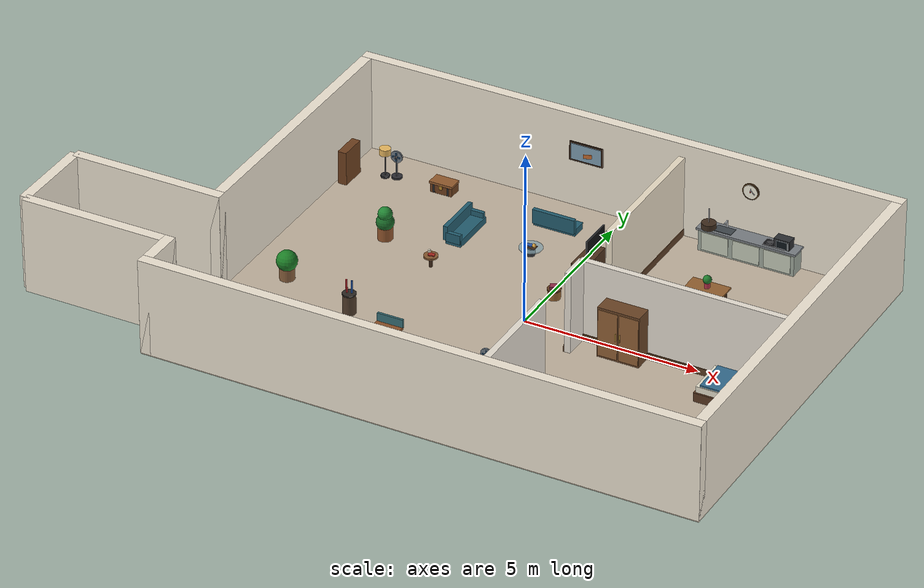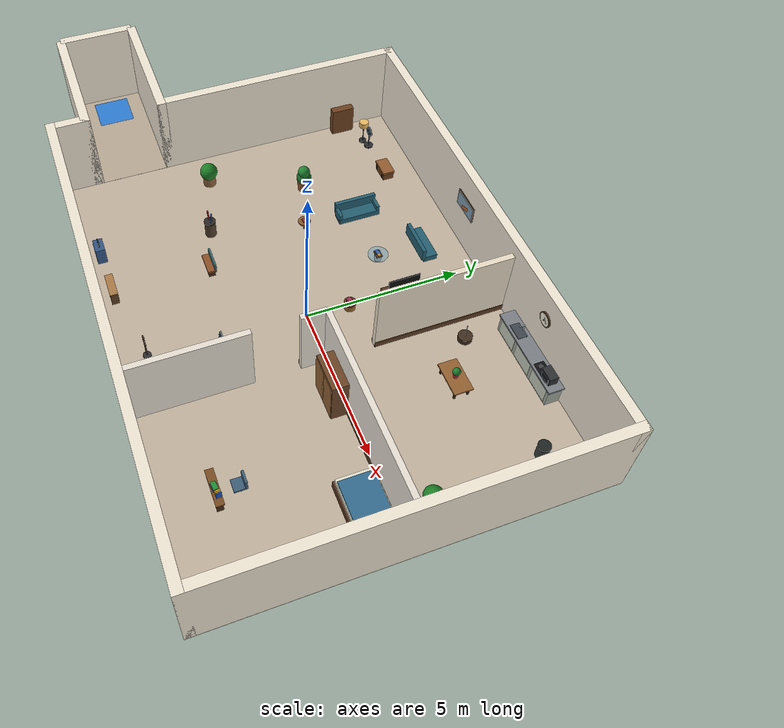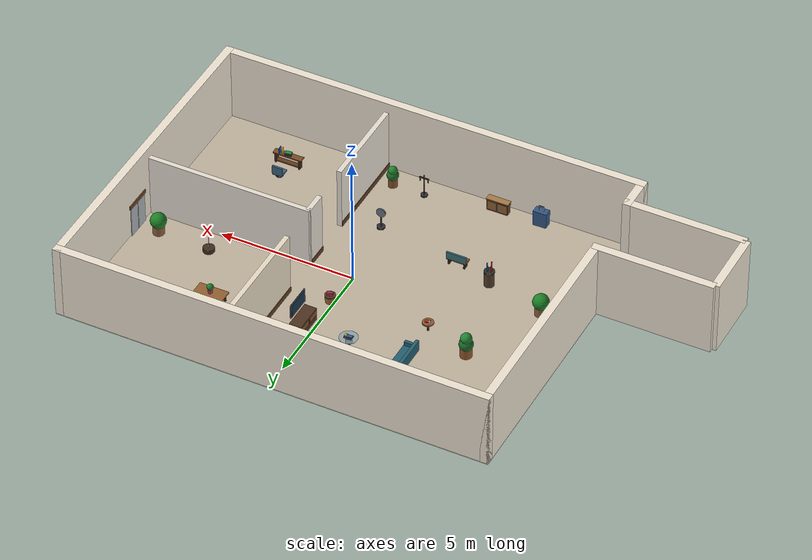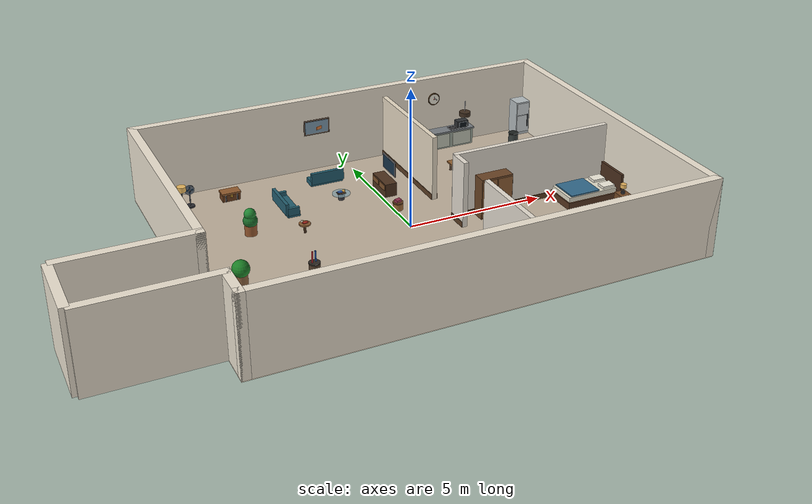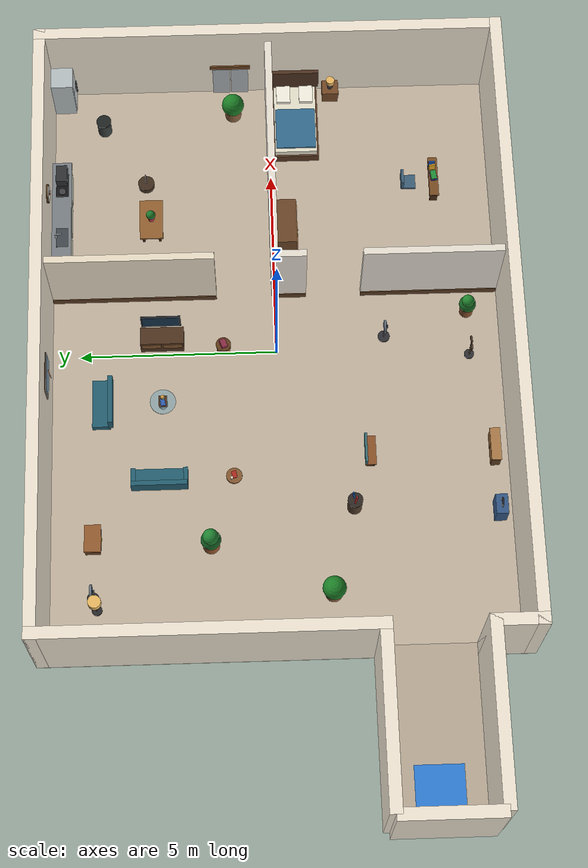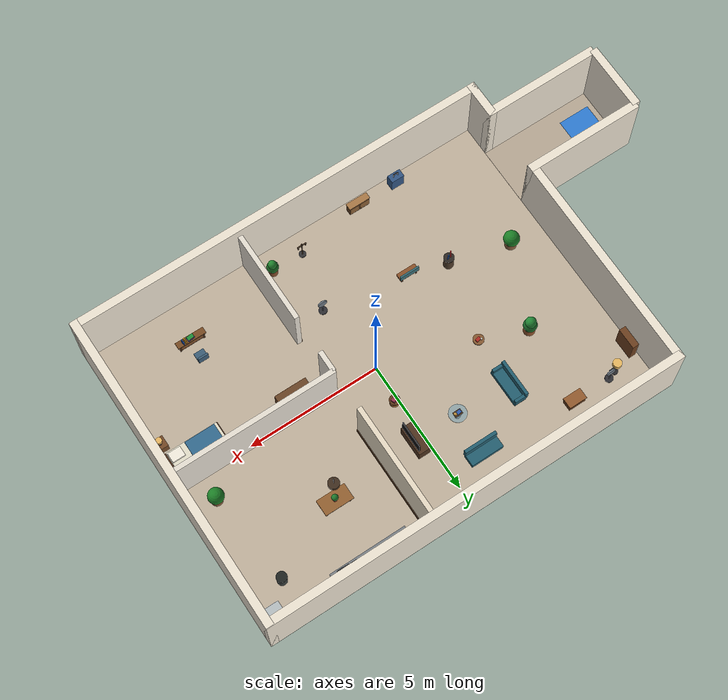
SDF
<?xml version="1.0"?>
<sdf version="1.9">
  <world name="hotel_lobby">
    <physics name="fixed_1ms" type="ignored">
      <max_step_size>0.001</max_step_size>
      <real_time_factor>1.0</real_time_factor>
      <real_time_update_rate>1000</real_time_update_rate>
    </physics>

    <gravity>0 0 -9.80665</gravity>
    <plugin filename="gz-sim-physics-system" name="gz::sim::systems::Physics"/>
    <plugin filename="gz-sim-user-commands-system" name="gz::sim::systems::UserCommands"/>
    <plugin filename="gz-sim-scene-broadcaster-system" name="gz::sim::systems::SceneBroadcaster"/>
    <plugin filename="gz-sim-sensors-system" name="gz::sim::systems::Sensors">
      <render_engine>ogre2</render_engine>
    </plugin>

    <scene>
      <ambient>0.62 0.58 0.53 1</ambient>
      <background>0.16 0.18 0.22 1</background>
      <shadows>true</shadows>
    </scene>

    <light name="warm_lobby_light_west" type="point">
      <pose>-4 0 4.2 0 0 0</pose>
      <diffuse>1.0 0.82 0.63 1</diffuse>
      <specular>0.18 0.16 0.14 1</specular>
      <attenuation>
        <range>14</range>
        <constant>0.7</constant>
        <linear>0.03</linear>
        <quadratic>0.002</quadratic>
      </attenuation>
    </light>

    <light name="warm_lobby_light_east" type="point">
      <pose>4 0 4.2 0 0 0</pose>
      <diffuse>1.0 0.82 0.63 1</diffuse>
      <specular>0.18 0.16 0.14 1</specular>
      <attenuation>
        <range>14</range>
        <constant>0.7</constant>
        <linear>0.03</linear>
        <quadratic>0.002</quadratic>
      </attenuation>
    </light>

    <light name="warm_entry_corridor_light" type="point">
      <pose>-10.0 -3.5 2.5 0 0 0</pose>
      <diffuse>1.0 0.82 0.63 1</diffuse>
      <specular>0.16 0.14 0.12 1</specular>
      <attenuation>
        <range>8</range>
        <constant>0.7</constant>
        <linear>0.05</linear>
        <quadratic>0.004</quadratic>
      </attenuation>
    </light>

    <model name="hotel_floor">
      <static>true</static>
      <link name="floor_link">
        <collision name="floor_collision">
          <geometry>
            <plane><normal>0 0 1</normal><size>16 12</size></plane>
          </geometry>
          <surface>
            <friction>
              <ode><mu>1.2</mu><mu2>1.2</mu2></ode>
            </friction>
          </surface>
        </collision>
        <visual name="floor_visual">
          <geometry>
            <plane><normal>0 0 1</normal><size>16 12</size></plane>
          </geometry>
          <material>
            <ambient>0.62 0.57 0.50 1</ambient>
            <diffuse>0.76 0.70 0.62 1</diffuse>
            <specular>0.18 0.18 0.18 1</specular>
          </material>
        </visual>
      </link>
    </model>

    <!-- A 4.3 m entry corridor makes every route into the hotel pass through
         one wide, straight approach before exploration reaches the rooms. -->
    <model name="entry_corridor_floor">
      <static>true</static>
      <pose>-9.925 -3.50 0 0 0 0</pose>
      <link name="corridor_floor_link">
        <collision name="corridor_floor_collision">
          <geometry>
            <plane><normal>0 0 1</normal><size>4.45 2.50</size></plane>
          </geometry>
          <surface>
            <friction>
              <ode><mu>1.2</mu><mu2>1.2</mu2></ode>
            </friction>
          </surface>
        </collision>
        <visual name="corridor_floor_visual">
          <geometry>
            <plane><normal>0 0 1</normal><size>4.45 2.50</size></plane>
          </geometry>
          <material>
            <ambient>0.58 0.54 0.48 1</ambient>
            <diffuse>0.72 0.66 0.58 1</diffuse>
            <specular>0.14 0.14 0.14 1</specular>
          </material>
        </visual>
      </link>
    </model>

    <model name="north_wall">
      <static>true</static>
      <pose>0 5.85 1.4 0 0 0</pose>
      <link name="link">
        <collision name="collision">
          <geometry><box><size>16 0.30 2.8</size></box></geometry>
        </collision>
        <visual name="visual">
          <geometry><box><size>16 0.30 2.8</size></box></geometry>
          <material>
            <ambient>0.82 0.78 0.72 1</ambient>
            <diffuse>0.94 0.90 0.83 1</diffuse>
          </material>
        </visual>
      </link>
    </model>

    <model name="south_wall">
      <static>true</static>
      <pose>0 -5.85 1.4 0 0 0</pose>
      <link name="link">
        <collision name="collision">
          <geometry><box><size>16 0.30 2.8</size></box></geometry>
        </collision>
        <visual name="visual">
          <geometry><box><size>16 0.30 2.8</size></box></geometry>
          <material>
            <ambient>0.82 0.78 0.72 1</ambient>
            <diffuse>0.94 0.90 0.83 1</diffuse>
          </material>
        </visual>
      </link>
    </model>

    <model name="west_wall">
      <static>true</static>
      <pose>-7.85 1.80 1.4 0 0 0</pose>
      <link name="link">
        <collision name="collision">
          <geometry><box><size>0.30 8.40 2.8</size></box></geometry>
        </collision>
        <visual name="visual">
          <geometry><box><size>0.30 8.40 2.8</size></box></geometry>
          <material>
            <ambient>0.82 0.78 0.72 1</ambient>
            <diffuse>0.94 0.90 0.83 1</diffuse>
          </material>
        </visual>
      </link>
    </model>

    <model name="west_wall_lower">
      <static>true</static>
      <pose>-7.85 -5.30 1.4 0 0 0</pose>
      <link name="link">
        <collision name="collision">
          <geometry><box><size>0.30 1.40 2.8</size></box></geometry>
        </collision>
        <visual name="visual">
          <geometry><box><size>0.30 1.40 2.8</size></box></geometry>
          <material>
            <ambient>0.82 0.78 0.72 1</ambient>
            <diffuse>0.94 0.90 0.83 1</diffuse>
          </material>
        </visual>
      </link>
    </model>

    <model name="entry_corridor_north_wall">
      <static>true</static>
      <pose>-9.925 -2.25 1.4 0 0 0</pose>
      <link name="link">
        <collision name="collision">
          <geometry><box><size>4.45 0.30 2.8</size></box></geometry>
        </collision>
        <visual name="visual">
          <geometry><box><size>4.45 0.30 2.8</size></box></geometry>
          <material>
            <ambient>0.82 0.78 0.72 1</ambient>
            <diffuse>0.94 0.90 0.83 1</diffuse>
          </material>
        </visual>
      </link>
    </model>

    <model name="entry_corridor_south_wall">
      <static>true</static>
      <pose>-9.925 -4.75 1.4 0 0 0</pose>
      <link name="link">
        <collision name="collision">
          <geometry><box><size>4.45 0.30 2.8</size></box></geometry>
        </collision>
        <visual name="visual">
          <geometry><box><size>4.45 0.30 2.8</size></box></geometry>
          <material>
            <ambient>0.82 0.78 0.72 1</ambient>
            <diffuse>0.94 0.90 0.83 1</diffuse>
          </material>
        </visual>
      </link>
    </model>

    <model name="entry_corridor_end_wall">
      <static>true</static>
      <pose>-12.15 -3.50 1.4 0 0 0</pose>
      <link name="link">
        <collision name="collision">
          <geometry><box><size>0.30 2.50 2.8</size></box></geometry>
        </collision>
        <visual name="visual">
          <geometry><box><size>0.30 2.50 2.8</size></box></geometry>
          <material>
            <ambient>0.82 0.78 0.72 1</ambient>
            <diffuse>0.94 0.90 0.83 1</diffuse>
          </material>
        </visual>
      </link>
    </model>

    <model name="east_wall">
      <static>true</static>
      <pose>7.85 0 1.4 0 0 0</pose>
      <link name="link">
        <collision name="collision">
          <geometry><box><size>0.30 12 2.8</size></box></geometry>
        </collision>
        <visual name="visual">
          <geometry><box><size>0.30 12 2.8</size></box></geometry>
          <material>
            <ambient>0.82 0.78 0.72 1</ambient>
            <diffuse>0.94 0.90 0.83 1</diffuse>
          </material>
        </visual>
      </link>
    </model>

    <model name="lobby_sofa_west">
      <static>true</static>
      <pose>-3.40 3.00 0.225 0 0 1.570796326794897</pose>
      <link name="sofa_link">
        <collision name="sofa_collision">
          <geometry><box><size>1.4 0.5 0.45</size></box></geometry>
        </collision>
        <visual name="seat">
          <pose>0 -0.05 -0.09 0 0 0</pose>
          <geometry><box><size>1.4 0.45 0.2</size></box></geometry>
          <material>
            <ambient>0.10 0.22 0.27 1</ambient>
            <diffuse>0.14 0.37 0.44 1</diffuse>
          </material>
        </visual>
        <visual name="back">
          <pose>0 0.19 0.125 0 0 0</pose>
          <geometry><box><size>1.4 0.12 0.425</size></box></geometry>
          <material>
            <ambient>0.10 0.22 0.27 1</ambient>
            <diffuse>0.14 0.37 0.44 1</diffuse>
          </material>
        </visual>
        <visual name="left_arm">
          <pose>-0.65 -0.04 0.025 0 0 0</pose>
          <geometry><box><size>0.11 0.425 0.275</size></box></geometry>
          <material>
            <ambient>0.10 0.22 0.27 1</ambient>
            <diffuse>0.14 0.37 0.44 1</diffuse>
          </material>
        </visual>
        <visual name="right_arm">
          <pose>0.65 -0.04 0.025 0 0 0</pose>
          <geometry><box><size>0.11 0.425 0.275</size></box></geometry>
          <material>
            <ambient>0.10 0.22 0.27 1</ambient>
            <diffuse>0.14 0.37 0.44 1</diffuse>
          </material>
        </visual>
      </link>
    </model>

    <model name="lobby_sofa_north">
      <static>true</static>
      <pose>-1.35 4.40 0.225 0 0 3.141592653589793</pose>
      <link name="sofa_link">
        <collision name="sofa_collision">
          <geometry><box><size>1.25 0.5 0.45</size></box></geometry>
        </collision>
        <visual name="seat">
          <pose>0 -0.05 -0.09 0 0 0</pose>
          <geometry><box><size>1.25 0.45 0.2</size></box></geometry>
          <material>
            <ambient>0.10 0.22 0.27 1</ambient>
            <diffuse>0.14 0.37 0.44 1</diffuse>
          </material>
        </visual>
        <visual name="back">
          <pose>0 0.19 0.125 0 0 0</pose>
          <geometry><box><size>1.25 0.12 0.425</size></box></geometry>
          <material>
            <ambient>0.10 0.22 0.27 1</ambient>
            <diffuse>0.14 0.37 0.44 1</diffuse>
          </material>
        </visual>
      </link>
    </model>

    <model name="lobby_coffee_table">
      <static>true</static>
      <pose>-1.35 2.90 0.12 0 0 0</pose>
      <link name="table_link">
        <collision name="table_collision">
          <geometry><cylinder><radius>0.325</radius><length>0.24</length></cylinder></geometry>
        </collision>
        <visual name="base">
          <geometry><cylinder><radius>0.11</radius><length>0.225</length></cylinder></geometry>
          <material>
            <ambient>0.13 0.13 0.14 1</ambient>
            <diffuse>0.22 0.22 0.24 1</diffuse>
          </material>
        </visual>
        <visual name="glass_top">
          <pose>0 0 0.125 0 0 0</pose>
          <geometry><cylinder><radius>0.325</radius><length>0.03</length></cylinder></geometry>
          <material>
            <ambient>0.38 0.48 0.52 0.75</ambient>
            <diffuse>0.56 0.68 0.72 0.75</diffuse>
            <specular>0.45 0.45 0.45 1</specular>
          </material>
        </visual>
      </link>
    </model>

    <model name="planter_west">
      <static>true</static>
      <pose>-6.4 -1.2 0.24 0 0 0</pose>
      <link name="planter_link">
        <collision name="planter_collision">
          <geometry><cylinder><radius>0.21</radius><length>0.48</length></cylinder></geometry>
        </collision>
        <visual name="pot">
          <geometry><cylinder><radius>0.21</radius><length>0.375</length></cylinder></geometry>
          <material>
            <ambient>0.34 0.23 0.16 1</ambient>
            <diffuse>0.54 0.38 0.24 1</diffuse>
          </material>
        </visual>
        <visual name="plant">
          <pose>0 0 0.36 0 0 0</pose>
          <geometry><sphere><radius>0.29</radius></sphere></geometry>
          <material>
            <ambient>0.08 0.30 0.10 1</ambient>
            <diffuse>0.11 0.50 0.15 1</diffuse>
          </material>
        </visual>
      </link>
    </model>

    <model name="planter_east">
      <static>true</static>
      <pose>6.90 0.95 0.24 0 0 0</pose>
      <link name="planter_link">
        <collision name="planter_collision">
          <geometry><cylinder><radius>0.21</radius><length>0.48</length></cylinder></geometry>
        </collision>
        <visual name="pot">
          <geometry><cylinder><radius>0.21</radius><length>0.375</length></cylinder></geometry>
          <material>
            <ambient>0.34 0.23 0.16 1</ambient>
            <diffuse>0.54 0.38 0.24 1</diffuse>
          </material>
        </visual>
        <visual name="plant">
          <pose>0 0 0.36 0 0 0</pose>
          <geometry><sphere><radius>0.29</radius></sphere></geometry>
          <material>
            <ambient>0.08 0.30 0.10 1</ambient>
            <diffuse>0.11 0.50 0.15 1</diffuse>
          </material>
        </visual>
      </link>
    </model>

    <model name="indoor_dining_table">
      <static>true</static>
      <pose>3.7 3.15 0.19 0 0 0</pose>
      <link name="table_link">
        <collision name="table_collision">
          <geometry><box><size>1.1 0.6 0.38</size></box></geometry>
        </collision>
        <visual name="table_top">
          <pose>0 0 0.165 0 0 0</pose>
          <geometry><box><size>1.1 0.6 0.05</size></box></geometry>
          <material>
            <ambient>0.33 0.20 0.10 1</ambient>
            <diffuse>0.58 0.38 0.19 1</diffuse>
            <specular>0.12 0.12 0.12 1</specular>
          </material>
        </visual>
        <visual name="table_leg_nw">
          <pose>-0.44 0.21 -0.01 0 0 0</pose>
          <geometry><box><size>0.06 0.06 0.33</size></box></geometry>
          <material><diffuse>0.26 0.16 0.08 1</diffuse></material>
        </visual>
        <visual name="table_leg_ne">
          <pose>0.44 0.21 -0.01 0 0 0</pose>
          <geometry><box><size>0.06 0.06 0.33</size></box></geometry>
          <material><diffuse>0.26 0.16 0.08 1</diffuse></material>
        </visual>
        <visual name="table_leg_sw">
          <pose>-0.44 -0.21 -0.01 0 0 0</pose>
          <geometry><box><size>0.06 0.06 0.33</size></box></geometry>
          <material><diffuse>0.26 0.16 0.08 1</diffuse></material>
        </visual>
        <visual name="table_leg_se">
          <pose>0.44 -0.21 -0.01 0 0 0</pose>
          <geometry><box><size>0.06 0.06 0.33</size></box></geometry>
          <material><diffuse>0.26 0.16 0.08 1</diffuse></material>
        </visual>
      </link>
    </model>

    <model name="dining_table_vase">
      <static>true</static>
      <pose>3.7 3.15 0.475 0 0 0</pose>
      <link name="vase_link">
        <collision name="vase_collision">
          <geometry><cylinder><radius>0.08</radius><length>0.18</length></cylinder></geometry>
        </collision>
        <visual name="vase_body">
          <geometry><cylinder><radius>0.08</radius><length>0.18</length></cylinder></geometry>
          <material>
            <ambient>0.45 0.12 0.18 1</ambient>
            <diffuse>0.72 0.20 0.29 1</diffuse>
            <specular>0.22 0.22 0.22 1</specular>
          </material>
        </visual>
        <visual name="vase_leaves">
          <pose>0 0 0.15 0 0 0</pose>
          <geometry><sphere><radius>0.12</radius></sphere></geometry>
          <material><diffuse>0.12 0.48 0.17 1</diffuse></material>
        </visual>
      </link>
    </model>

    <model name="bedroom_desk">
      <static>true</static>
      <pose>4.7 -4.25 0.225 0 0 0</pose>
      <link name="console_link">
        <collision name="console_collision">
          <geometry><box><size>1.1 0.24 0.45</size></box></geometry>
        </collision>
        <visual name="console_top">
          <pose>0 0 0.2 0 0 0</pose>
          <geometry><box><size>1.1 0.24 0.05</size></box></geometry>
          <material><diffuse>0.48 0.30 0.14 1</diffuse></material>
        </visual>
        <visual name="console_leg_left">
          <pose>-0.455 0 -0.015 0 0 0</pose>
          <geometry><box><size>0.06 0.19 0.39</size></box></geometry>
          <material><diffuse>0.28 0.17 0.08 1</diffuse></material>
        </visual>
        <visual name="console_leg_right">
          <pose>0.455 0 -0.015 0 0 0</pose>
          <geometry><box><size>0.06 0.19 0.39</size></box></geometry>
          <material><diffuse>0.28 0.17 0.08 1</diffuse></material>
        </visual>
        <visual name="console_lower_shelf">
          <pose>0 0 -0.12 0 0 0</pose>
          <geometry><box><size>0.94 0.19 0.04</size></box></geometry>
          <material><diffuse>0.38 0.23 0.11 1</diffuse></material>
        </visual>
      </link>
    </model>

    <model name="bedroom_desk_books">
      <static>true</static>
      <pose>4.7 -4.25 0.49 0 0 0.12</pose>
      <link name="books_link">
        <collision name="books_collision">
          <geometry><box><size>0.26 0.17 0.08</size></box></geometry>
        </collision>
        <visual name="book_blue">
          <pose>0 0 -0.025 0 0 0</pose>
          <geometry><box><size>0.26 0.17 0.03</size></box></geometry>
          <material><diffuse>0.10 0.30 0.72 1</diffuse></material>
        </visual>
        <visual name="book_red">
          <pose>0 0 0.01 0 0 0</pose>
          <geometry><box><size>0.23 0.155 0.03</size></box></geometry>
          <material><diffuse>0.76 0.13 0.12 1</diffuse></material>
        </visual>
        <visual name="book_green">
          <pose>0 0 0.045 0 0 0</pose>
          <geometry><box><size>0.245 0.145 0.03</size></box></geometry>
          <material><diffuse>0.12 0.56 0.22 1</diffuse></material>
        </visual>
        <visual name="book_yellow_upright">
          <pose>0.22 0 0.07 0 0 0</pose>
          <geometry><box><size>0.035 0.16 0.22</size></box></geometry>
          <material><diffuse>0.90 0.66 0.12 1</diffuse></material>
        </visual>
        <visual name="book_blue_upright">
          <pose>0.31 0 0.075 0 0 -0.04</pose>
          <geometry><box><size>0.035 0.16 0.23</size></box></geometry>
          <material><diffuse>0.10 0.32 0.70 1</diffuse></material>
        </visual>
      </link>
    </model>

    <model name="lobby_floor_lamp">
      <static>true</static>
      <pose>-6.65 4.55 0.45 0 0 0</pose>
      <link name="lamp_link">
        <collision name="lamp_collision">
          <geometry><cylinder><radius>0.125</radius><length>0.9</length></cylinder></geometry>
        </collision>
        <visual name="lamp_base">
          <pose>0 0 -0.41 0 0 0</pose>
          <geometry><cylinder><radius>0.125</radius><length>0.06</length></cylinder></geometry>
          <material><diffuse>0.16 0.16 0.17 1</diffuse></material>
        </visual>
        <visual name="lamp_post">
          <pose>0 0 -0.05 0 0 0</pose>
          <geometry><cylinder><radius>0.0175</radius><length>0.725</length></cylinder></geometry>
          <material><diffuse>0.27 0.27 0.29 1</diffuse></material>
        </visual>
        <visual name="lamp_shade">
          <pose>0 0 0.36 0 0 0</pose>
          <geometry><cylinder><radius>0.16</radius><length>0.19</length></cylinder></geometry>
          <material>
            <ambient>0.68 0.50 0.22 1</ambient>
            <diffuse>0.92 0.73 0.38 1</diffuse>
            <emissive>0.04 0.03 0.01 1</emissive>
          </material>
        </visual>
      </link>
    </model>

    <model name="lobby_bookshelf">
      <static>true</static>
      <pose>-7.48 4.05 0.5 0 0 0</pose>
      <link name="bookshelf_link">
        <collision name="bookshelf_collision">
          <geometry><box><size>0.25 0.775 1</size></box></geometry>
        </collision>
        <visual name="bookshelf_body">
          <geometry><box><size>0.25 0.775 1</size></box></geometry>
          <material><diffuse>0.43 0.25 0.12 1</diffuse></material>
        </visual>
        <visual name="bookshelf_opening">
          <pose>-0.13 0 0 0 0 0</pose>
          <geometry><box><size>0.0125 0.65 0.87</size></box></geometry>
          <material><diffuse>0.10 0.07 0.05 1</diffuse></material>
        </visual>
        <visual name="shelf_red_books">
          <pose>-0.145 -0.19 -0.26 0 0 0</pose>
          <geometry><box><size>0.04 0.14 0.21</size></box></geometry>
          <material><diffuse>0.72 0.12 0.12 1</diffuse></material>
        </visual>
        <visual name="shelf_blue_books">
          <pose>-0.145 0.05 0.185 0 0 0</pose>
          <geometry><box><size>0.04 0.19 0.23</size></box></geometry>
          <material><diffuse>0.10 0.28 0.68 1</diffuse></material>
        </visual>
      </link>
    </model>

    <model name="center_storage_chest">
      <static>true</static>
      <pose>-4.90 4.65 0.16 0 0 0</pose>
      <link name="chest_link">
        <collision name="chest_collision">
          <geometry><box><size>0.65 0.375 0.32</size></box></geometry>
        </collision>
        <visual name="chest_body">
          <pose>0 0 -0.025 0 0 0</pose>
          <geometry><box><size>0.65 0.375 0.27</size></box></geometry>
          <material><diffuse>0.43 0.25 0.12 1</diffuse></material>
        </visual>
        <visual name="chest_lid">
          <pose>0 0 0.135 0 0 0</pose>
          <geometry><box><size>0.69 0.41 0.07</size></box></geometry>
          <material><diffuse>0.58 0.36 0.18 1</diffuse></material>
        </visual>
        <visual name="chest_left_band">
          <pose>-0.21 -0.193 0 0 0 0</pose>
          <geometry><box><size>0.05 0.0125 0.29</size></box></geometry>
          <material><diffuse>0.16 0.16 0.17 1</diffuse></material>
        </visual>
        <visual name="chest_right_band">
          <pose>0.21 -0.193 0 0 0 0</pose>
          <geometry><box><size>0.05 0.0125 0.29</size></box></geometry>
          <material><diffuse>0.16 0.16 0.17 1</diffuse></material>
        </visual>
        <visual name="chest_latch">
          <pose>0 -0.2025 0.05 0 0 0</pose>
          <geometry><box><size>0.09 0.03 0.11</size></box></geometry>
          <material><diffuse>0.72 0.52 0.16 1</diffuse></material>
        </visual>
      </link>
    </model>

    <model name="center_floor_fan">
      <static>true</static>
      <pose>-6.35 4.65 0.425 0 0 0</pose>
      <link name="fan_link">
        <collision name="fan_collision">
          <geometry><box><size>0.35 0.225 0.85</size></box></geometry>
        </collision>
        <visual name="fan_base">
          <pose>0 0 -0.385 0 0 0</pose>
          <geometry><cylinder><radius>0.15</radius><length>0.06</length></cylinder></geometry>
          <material><diffuse>0.18 0.18 0.20 1</diffuse></material>
        </visual>
        <visual name="fan_post">
          <pose>0 0 -0.11 0 0 0</pose>
          <geometry><cylinder><radius>0.0225</radius><length>0.525</length></cylinder></geometry>
          <material><diffuse>0.34 0.35 0.37 1</diffuse></material>
        </visual>
        <visual name="fan_guard">
          <pose>0 0 0.24 1.570796326794897 0 0</pose>
          <geometry><cylinder><radius>0.175</radius><length>0.05</length></cylinder></geometry>
          <material>
            <ambient>0.28 0.31 0.34 1</ambient>
            <diffuse>0.42 0.46 0.50 1</diffuse>
            <specular>0.18 0.18 0.18 1</specular>
          </material>
        </visual>
        <visual name="fan_blade_vertical">
          <pose>0 -0.035 0.24 0 0 0</pose>
          <geometry><box><size>0.04 0.02 0.25</size></box></geometry>
          <material><diffuse>0.14 0.31 0.45 1</diffuse></material>
        </visual>
        <visual name="fan_blade_horizontal">
          <pose>0 -0.036 0.24 0 0 0</pose>
          <geometry><box><size>0.25 0.02 0.04</size></box></geometry>
          <material><diffuse>0.14 0.31 0.45 1</diffuse></material>
        </visual>
        <visual name="fan_hub">
          <pose>0 -0.05 0.24 1.570796326794897 0 0</pose>
          <geometry><cylinder><radius>0.045</radius><length>0.06</length></cylinder></geometry>
          <material><diffuse>0.12 0.12 0.13 1</diffuse></material>
        </visual>
      </link>
    </model>

    <model name="center_woven_basket">
      <static>true</static>
      <pose>0.15 1.35 0.14 0 0 0</pose>
      <link name="basket_link">
        <collision name="basket_collision">
          <geometry><cylinder><radius>0.175</radius><length>0.28</length></cylinder></geometry>
        </collision>
        <visual name="basket_body">
          <geometry><cylinder><radius>0.175</radius><length>0.28</length></cylinder></geometry>
          <material><diffuse>0.59 0.39 0.19 1</diffuse></material>
        </visual>
        <visual name="basket_rim">
          <pose>0 0 0.135 0 0 0</pose>
          <geometry><cylinder><radius>0.19</radius><length>0.04</length></cylinder></geometry>
          <material><diffuse>0.38 0.23 0.11 1</diffuse></material>
        </visual>
        <visual name="basket_blanket">
          <pose>0 0 0.195 0.12 0 0.35</pose>
          <geometry><box><size>0.22 0.15 0.11</size></box></geometry>
          <material><diffuse>0.56 0.18 0.28 1</diffuse></material>
        </visual>
      </link>
    </model>

    <!-- This partition aligns with the bedroom's west wall. Its south edge
         leaves a 1.4 m kitchen doorway above the centered bedroom wall. -->
    <model name="living_kitchen_partition">
      <static>true</static>
      <pose>1.65 3.60 1.20 0 0 0</pose>
      <link name="partition_link">
        <collision name="partition_collision">
          <geometry><box><size>0.18 4.20 2.40</size></box></geometry>
        </collision>
        <visual name="partition_wall">
          <geometry><box><size>0.18 4.20 2.40</size></box></geometry>
          <material>
            <ambient>0.78 0.73 0.65 1</ambient>
            <diffuse>0.92 0.87 0.78 1</diffuse>
          </material>
        </visual>
        <visual name="partition_baseboard_west">
          <pose>-0.101 0 -1.10 0 0 0</pose>
          <geometry><box><size>0.025 4.20 0.20</size></box></geometry>
          <material><diffuse>0.36 0.24 0.14 1</diffuse></material>
        </visual>
        <visual name="partition_baseboard_east">
          <pose>0.101 0 -1.10 0 0 0</pose>
          <geometry><box><size>0.025 4.20 0.20</size></box></geometry>
          <material><diffuse>0.36 0.24 0.14 1</diffuse></material>
        </visual>
      </link>
    </model>

    <!-- Living-room media unit: placed against the west face of the partition,
         opposite the sofa group instead of in the navigation aisle. -->
    <model name="living_tv_unit">
      <static>true</static>
      <pose>0.35 2.90 0.25 0 0 0</pose>
      <link name="tv_unit_link">
        <collision name="console_collision">
          <geometry><box><size>0.45 1.10 0.50</size></box></geometry>
        </collision>
        <visual name="console_body">
          <geometry><box><size>0.45 1.10 0.50</size></box></geometry>
          <material><diffuse>0.31 0.20 0.12 1</diffuse></material>
        </visual>
        <visual name="console_door_upper">
          <pose>-0.231 0.27 0.10 0 0 0</pose>
          <geometry><box><size>0.018 0.48 0.20</size></box></geometry>
          <material><diffuse>0.50 0.33 0.18 1</diffuse></material>
        </visual>
        <visual name="console_door_lower">
          <pose>-0.231 -0.27 0.10 0 0 0</pose>
          <geometry><box><size>0.018 0.48 0.20</size></box></geometry>
          <material><diffuse>0.50 0.33 0.18 1</diffuse></material>
        </visual>
        <visual name="television_frame">
          <pose>0.19 0 0.72 0 0 0</pose>
          <geometry><box><size>0.04 1.00 0.56</size></box></geometry>
          <material><diffuse>0.05 0.05 0.06 1</diffuse></material>
        </visual>
        <visual name="television_screen">
          <pose>0.168 0 0.72 0 0 0</pose>
          <geometry><box><size>0.008 0.92 0.48</size></box></geometry>
          <material>
            <ambient>0.06 0.12 0.17 1</ambient>
            <diffuse>0.09 0.20 0.29 1</diffuse>
            <specular>0.35 0.35 0.35 1</specular>
          </material>
        </visual>
      </link>
    </model>

    <!-- Side table belongs to the west sofa and holds small indoor props. -->
    <model name="living_side_table">
      <static>true</static>
      <pose>-3.40 1.15 0.18 0 0 0</pose>
      <link name="side_table_link">
        <collision name="side_table_collision">
          <geometry><cylinder><radius>0.20</radius><length>0.36</length></cylinder></geometry>
        </collision>
        <visual name="side_table_leg">
          <pose>0 0 -0.02 0 0 0</pose>
          <geometry><cylinder><radius>0.045</radius><length>0.30</length></cylinder></geometry>
          <material><diffuse>0.25 0.16 0.09 1</diffuse></material>
        </visual>
        <visual name="side_table_top">
          <pose>0 0 0.16 0 0 0</pose>
          <geometry><cylinder><radius>0.20</radius><length>0.05</length></cylinder></geometry>
          <material><diffuse>0.53 0.35 0.19 1</diffuse></material>
        </visual>
        <visual name="side_table_book">
          <pose>0.02 0 0.205 0 0 0.20</pose>
          <geometry><box><size>0.18 0.12 0.035</size></box></geometry>
          <material><diffuse>0.68 0.16 0.12 1</diffuse></material>
        </visual>
        <visual name="side_table_cup">
          <pose>-0.08 0.06 0.25 0 0 0</pose>
          <geometry><cylinder><radius>0.035</radius><length>0.08</length></cylinder></geometry>
          <material><diffuse>0.91 0.88 0.80 1</diffuse></material>
        </visual>
      </link>
    </model>

    <!-- A plant anchors the open south-west corner of the seating group. -->
    <model name="living_floor_plant">
      <static>true</static>
      <pose>-5.10 1.75 0.24 0 0 0</pose>
      <link name="living_plant_link">
        <collision name="living_plant_collision">
          <geometry><cylinder><radius>0.21</radius><length>0.48</length></cylinder></geometry>
        </collision>
        <visual name="living_plant_pot">
          <geometry><cylinder><radius>0.21</radius><length>0.38</length></cylinder></geometry>
          <material><diffuse>0.58 0.34 0.18 1</diffuse></material>
        </visual>
        <visual name="living_plant_leaves_lower">
          <pose>0 0 0.32 0 0 0</pose>
          <geometry><sphere><radius>0.25</radius></sphere></geometry>
          <material><diffuse>0.10 0.42 0.16 1</diffuse></material>
        </visual>
        <visual name="living_plant_leaves_upper">
          <pose>0 0 0.57 0 0 0</pose>
          <geometry><sphere><radius>0.20</radius></sphere></geometry>
          <material><diffuse>0.13 0.52 0.20 1</diffuse></material>
        </visual>
      </link>
    </model>

    <!-- Small items are grouped into one model on top of the coffee table. -->
    <model name="living_coffee_table_decor">
      <static>true</static>
      <pose>-1.35 2.90 0.29 0 0 0</pose>
      <link name="coffee_decor_link">
        <collision name="coffee_decor_collision">
          <geometry><box><size>0.30 0.20 0.08</size></box></geometry>
        </collision>
        <visual name="coffee_tray">
          <pose>0 0 -0.025 0 0 0</pose>
          <geometry><box><size>0.30 0.20 0.025</size></box></geometry>
          <material><diffuse>0.30 0.20 0.12 1</diffuse></material>
        </visual>
        <visual name="coffee_book">
          <pose>-0.04 0 0.015 0 0 0.15</pose>
          <geometry><box><size>0.18 0.12 0.035</size></box></geometry>
          <material><diffuse>0.18 0.36 0.68 1</diffuse></material>
        </visual>
        <visual name="coffee_bowl">
          <pose>0.095 0 0.035 0 0 0</pose>
          <geometry><sphere><radius>0.055</radius></sphere></geometry>
          <material><diffuse>0.84 0.64 0.27 1</diffuse></material>
        </visual>
      </link>
    </model>

    <!-- Visual-only artwork centered above the north sofa. -->
    <model name="living_wall_art">
      <static>true</static>
      <pose>-1.15 5.66 1.70 0 0 0</pose>
      <link name="wall_art_link">
        <visual name="wall_art_frame">
          <geometry><box><size>1.00 0.035 0.58</size></box></geometry>
          <material><diffuse>0.20 0.13 0.08 1</diffuse></material>
        </visual>
        <visual name="wall_art_canvas">
          <pose>0 -0.022 0 0 0 0</pose>
          <geometry><box><size>0.90 0.018 0.48</size></box></geometry>
          <material>
            <ambient>0.35 0.42 0.48 1</ambient>
            <diffuse>0.50 0.62 0.70 1</diffuse>
          </material>
        </visual>
        <visual name="wall_art_accent">
          <pose>0.16 -0.034 -0.03 0 0 0.35</pose>
          <geometry><box><size>0.42 0.012 0.12</size></box></geometry>
          <material><diffuse>0.82 0.45 0.20 1</diffuse></material>
        </visual>
      </link>
    </model>

    <!-- Compact kitchen run along the north wall. All decorative details share
         one static model so the richer scene remains inexpensive to simulate. -->
    <model name="kitchen_counter_set">
      <static>true</static>
      <pose>3.80 5.46 0.325 0 0 0</pose>
      <link name="counter_link">
        <collision name="counter_collision">
          <geometry><box><size>2.80 0.45 0.65</size></box></geometry>
        </collision>
        <visual name="counter_cabinet">
          <geometry><box><size>2.80 0.45 0.65</size></box></geometry>
          <material><diffuse>0.62 0.66 0.61 1</diffuse></material>
        </visual>
        <visual name="counter_top">
          <pose>0 -0.01 0.34 0 0 0</pose>
          <geometry><box><size>2.90 0.50 0.06</size></box></geometry>
          <material>
            <ambient>0.28 0.29 0.30 1</ambient>
            <diffuse>0.48 0.50 0.52 1</diffuse>
            <specular>0.18 0.18 0.18 1</specular>
          </material>
        </visual>
        <visual name="cabinet_door_left">
          <pose>-0.91 -0.231 0 0 0 0</pose>
          <geometry><box><size>0.78 0.018 0.54</size></box></geometry>
          <material><diffuse>0.78 0.80 0.73 1</diffuse></material>
        </visual>
        <visual name="cabinet_door_center">
          <pose>0 -0.231 0 0 0 0</pose>
          <geometry><box><size>0.78 0.018 0.54</size></box></geometry>
          <material><diffuse>0.78 0.80 0.73 1</diffuse></material>
        </visual>
        <visual name="cabinet_door_right">
          <pose>0.91 -0.231 0 0 0 0</pose>
          <geometry><box><size>0.78 0.018 0.54</size></box></geometry>
          <material><diffuse>0.78 0.80 0.73 1</diffuse></material>
        </visual>
        <visual name="sink_basin">
          <pose>-0.72 -0.03 0.377 0 0 0</pose>
          <geometry><box><size>0.52 0.30 0.025</size></box></geometry>
          <material>
            <diffuse>0.25 0.28 0.30 1</diffuse>
            <specular>0.45 0.45 0.45 1</specular>
          </material>
        </visual>
        <visual name="faucet_post">
          <pose>-0.72 0.12 0.49 0 0 0</pose>
          <geometry><cylinder><radius>0.025</radius><length>0.22</length></cylinder></geometry>
          <material><diffuse>0.68 0.70 0.72 1</diffuse></material>
        </visual>
        <visual name="faucet_spout">
          <pose>-0.72 0.04 0.58 1.570796326794897 0 0</pose>
          <geometry><cylinder><radius>0.022</radius><length>0.16</length></cylinder></geometry>
          <material><diffuse>0.68 0.70 0.72 1</diffuse></material>
        </visual>
        <visual name="cooktop">
          <pose>0.78 -0.03 0.378 0 0 0</pose>
          <geometry><box><size>0.65 0.32 0.025</size></box></geometry>
          <material><diffuse>0.08 0.08 0.09 1</diffuse></material>
        </visual>
        <visual name="burner_left">
          <pose>0.60 -0.03 0.397 0 0 0</pose>
          <geometry><cylinder><radius>0.09</radius><length>0.016</length></cylinder></geometry>
          <material><diffuse>0.25 0.25 0.26 1</diffuse></material>
        </visual>
        <visual name="burner_right">
          <pose>0.96 -0.03 0.397 0 0 0</pose>
          <geometry><cylinder><radius>0.09</radius><length>0.016</length></cylinder></geometry>
          <material><diffuse>0.25 0.25 0.26 1</diffuse></material>
        </visual>
      </link>
    </model>

    <model name="kitchen_microwave">
      <static>true</static>
      <pose>4.80 5.44 0.82 0 0 0</pose>
      <link name="microwave_link">
        <collision name="microwave_collision">
          <geometry><box><size>0.46 0.28 0.30</size></box></geometry>
        </collision>
        <visual name="microwave_body">
          <geometry><box><size>0.46 0.28 0.30</size></box></geometry>
          <material><diffuse>0.18 0.19 0.20 1</diffuse></material>
        </visual>
        <visual name="microwave_door">
          <pose>0 -0.146 0 0 0 0</pose>
          <geometry><box><size>0.31 0.012 0.22</size></box></geometry>
          <material><diffuse>0.05 0.08 0.10 1</diffuse></material>
        </visual>
        <visual name="microwave_controls">
          <pose>0.18 -0.147 0 0 0 0</pose>
          <geometry><box><size>0.06 0.014 0.22</size></box></geometry>
          <material><diffuse>0.52 0.54 0.55 1</diffuse></material>
        </visual>
      </link>
    </model>

    <model name="kitchen_refrigerator">
      <static>true</static>
      <pose>7.41 5.42 0.68 0 0 0</pose>
      <link name="refrigerator_link">
        <collision name="refrigerator_collision">
          <geometry><box><size>0.58 0.56 1.36</size></box></geometry>
        </collision>
        <visual name="refrigerator_body">
          <geometry><box><size>0.58 0.56 1.36</size></box></geometry>
          <material><diffuse>0.72 0.75 0.76 1</diffuse></material>
        </visual>
        <visual name="freezer_door">
          <pose>0 -0.287 0.39 0 0 0</pose>
          <geometry><box><size>0.52 0.018 0.48</size></box></geometry>
          <material><diffuse>0.84 0.86 0.87 1</diffuse></material>
        </visual>
        <visual name="refrigerator_door">
          <pose>0 -0.287 -0.22 0 0 0</pose>
          <geometry><box><size>0.52 0.018 0.68</size></box></geometry>
          <material><diffuse>0.84 0.86 0.87 1</diffuse></material>
        </visual>
        <visual name="refrigerator_handle">
          <pose>0.20 -0.315 -0.10 0 0 0</pose>
          <geometry><box><size>0.035 0.035 0.50</size></box></geometry>
          <material><diffuse>0.26 0.27 0.28 1</diffuse></material>
        </visual>
      </link>
    </model>

    <model name="kitchen_trash_bin">
      <static>true</static>
      <pose>6.55 4.38 0.25 0 0 0</pose>
      <link name="trash_bin_link">
        <collision name="trash_bin_collision">
          <geometry><cylinder><radius>0.18</radius><length>0.50</length></cylinder></geometry>
        </collision>
        <visual name="trash_bin_body">
          <geometry><cylinder><radius>0.18</radius><length>0.50</length></cylinder></geometry>
          <material><diffuse>0.22 0.25 0.24 1</diffuse></material>
        </visual>
        <visual name="trash_bin_lid">
          <pose>0 0 0.255 0 0 0</pose>
          <geometry><cylinder><radius>0.19</radius><length>0.04</length></cylinder></geometry>
          <material><diffuse>0.12 0.14 0.13 1</diffuse></material>
        </visual>
      </link>
    </model>

    <!-- Visual-only pendant above the existing dining table. -->
    <model name="dining_pendant_light">
      <static>true</static>
      <pose>3.70 3.15 2.30 0 0 0</pose>
      <link name="pendant_link">
        <visual name="pendant_cord">
          <pose>0 0 0.25 0 0 0</pose>
          <geometry><cylinder><radius>0.012</radius><length>0.50</length></cylinder></geometry>
          <material><diffuse>0.10 0.10 0.11 1</diffuse></material>
        </visual>
        <visual name="pendant_shade">
          <geometry><cylinder><radius>0.20</radius><length>0.16</length></cylinder></geometry>
          <material><diffuse>0.25 0.18 0.12 1</diffuse></material>
        </visual>
        <visual name="pendant_bulb">
          <pose>0 0 -0.10 0 0 0</pose>
          <geometry><sphere><radius>0.06</radius></sphere></geometry>
          <material>
            <diffuse>0.98 0.84 0.52 1</diffuse>
            <emissive>0.20 0.15 0.06 1</emissive>
          </material>
        </visual>
      </link>
    </model>

    <!-- The centered north wall gives the east kitchen and bedroom equal room
         depth. The bedroom's west wall keeps a 1.4 m route doorway. -->
    <model name="bedroom_partition_north">
      <static>true</static>
      <pose>4.65 0.00 1.20 0 0 0</pose>
      <link name="north_partition_link">
        <collision name="north_partition_collision">
          <geometry><box><size>6.10 0.18 2.40</size></box></geometry>
        </collision>
        <visual name="north_partition_wall">
          <geometry><box><size>6.10 0.18 2.40</size></box></geometry>
          <material>
            <ambient>0.75 0.72 0.68 1</ambient>
            <diffuse>0.91 0.88 0.83 1</diffuse>
          </material>
        </visual>
        <visual name="north_partition_baseboard">
          <pose>0 -0.101 -1.10 0 0 0</pose>
          <geometry><box><size>6.10 0.025 0.20</size></box></geometry>
          <material><diffuse>0.36 0.24 0.14 1</diffuse></material>
        </visual>
      </link>
    </model>

    <model name="bedroom_partition_west">
      <static>true</static>
      <pose>1.65 -0.40 1.20 0 0 0</pose>
      <link name="west_partition_link">
        <collision name="west_partition_collision">
          <geometry><box><size>0.18 0.80 2.40</size></box></geometry>
        </collision>
        <visual name="west_partition_wall">
          <geometry><box><size>0.18 0.80 2.40</size></box></geometry>
          <material>
            <ambient>0.75 0.72 0.68 1</ambient>
            <diffuse>0.91 0.88 0.83 1</diffuse>
          </material>
        </visual>
        <visual name="west_partition_baseboard">
          <pose>-0.101 0 -1.10 0 0 0</pose>
          <geometry><box><size>0.025 0.80 0.20</size></box></geometry>
          <material><diffuse>0.36 0.24 0.14 1</diffuse></material>
        </visual>
      </link>
    </model>

    <model name="bedroom_partition_west_lower">
      <static>true</static>
      <pose>1.65 -3.95 1.20 0 0 0</pose>
      <link name="west_lower_partition_link">
        <collision name="west_lower_partition_collision">
          <geometry><box><size>0.18 3.50 2.40</size></box></geometry>
        </collision>
        <visual name="west_lower_partition_wall">
          <geometry><box><size>0.18 3.50 2.40</size></box></geometry>
          <material>
            <ambient>0.75 0.72 0.68 1</ambient>
            <diffuse>0.91 0.88 0.83 1</diffuse>
          </material>
        </visual>
        <visual name="west_lower_partition_baseboard">
          <pose>-0.101 0 -1.10 0 0 0</pose>
          <geometry><box><size>0.025 3.50 0.20</size></box></geometry>
          <material><diffuse>0.36 0.24 0.14 1</diffuse></material>
        </visual>
      </link>
    </model>

    <!-- The bed is flush with the north-east bedroom corner so Nav2 does not
         treat the narrow space behind it as a traversable route. -->
    <model name="bedroom_bed">
      <static>true</static>
      <pose>6.60 -0.69 0.25 0 0 0</pose>
      <link name="bed_link">
        <collision name="bed_collision">
          <geometry><box><size>2.20 1.20 0.50</size></box></geometry>
        </collision>
        <visual name="bed_frame">
          <pose>0 0 -0.12 0 0 0</pose>
          <geometry><box><size>2.20 1.20 0.26</size></box></geometry>
          <material><diffuse>0.35 0.22 0.13 1</diffuse></material>
        </visual>
        <visual name="bed_mattress">
          <pose>-0.08 0 0.08 0 0 0</pose>
          <geometry><box><size>1.95 1.10 0.22</size></box></geometry>
          <material><diffuse>0.90 0.88 0.80 1</diffuse></material>
        </visual>
        <visual name="bed_blanket">
          <pose>-0.38 0 0.205 0 0 0</pose>
          <geometry><box><size>1.15 1.04 0.07</size></box></geometry>
          <material><diffuse>0.20 0.42 0.56 1</diffuse></material>
        </visual>
        <visual name="bed_pillow_north">
          <pose>0.63 0.30 0.22 0 0 0</pose>
          <geometry><box><size>0.48 0.36 0.13</size></box></geometry>
          <material><diffuse>0.96 0.94 0.88 1</diffuse></material>
        </visual>
        <visual name="bed_pillow_south">
          <pose>0.63 -0.30 0.22 0 0 0</pose>
          <geometry><box><size>0.48 0.36 0.13</size></box></geometry>
          <material><diffuse>0.96 0.94 0.88 1</diffuse></material>
        </visual>
        <visual name="bed_headboard">
          <pose>1.05 0 0.35 0 0 0</pose>
          <geometry><box><size>0.10 1.30 0.70</size></box></geometry>
          <material><diffuse>0.30 0.19 0.12 1</diffuse></material>
        </visual>
      </link>
    </model>

    <model name="bedroom_nightstand">
      <static>true</static>
      <pose>7.49 -1.65 0.20 0 0 0</pose>
      <link name="nightstand_link">
        <collision name="nightstand_collision">
          <geometry><box><size>0.42 0.42 0.40</size></box></geometry>
        </collision>
        <visual name="nightstand_body">
          <geometry><box><size>0.42 0.42 0.40</size></box></geometry>
          <material><diffuse>0.46 0.29 0.15 1</diffuse></material>
        </visual>
        <visual name="nightstand_drawer">
          <pose>0 -0.216 0.08 0 0 0</pose>
          <geometry><box><size>0.34 0.018 0.14</size></box></geometry>
          <material><diffuse>0.62 0.42 0.23 1</diffuse></material>
        </visual>
        <visual name="bedside_lamp_base">
          <pose>0 0 0.24 0 0 0</pose>
          <geometry><cylinder><radius>0.07</radius><length>0.08</length></cylinder></geometry>
          <material><diffuse>0.20 0.20 0.21 1</diffuse></material>
        </visual>
        <visual name="bedside_lamp_post">
          <pose>0 0 0.36 0 0 0</pose>
          <geometry><cylinder><radius>0.018</radius><length>0.20</length></cylinder></geometry>
          <material><diffuse>0.30 0.30 0.31 1</diffuse></material>
        </visual>
        <visual name="bedside_lamp_shade">
          <pose>0 0 0.49 0 0 0</pose>
          <geometry><cylinder><radius>0.11</radius><length>0.14</length></cylinder></geometry>
          <material>
            <diffuse>0.92 0.72 0.38 1</diffuse>
            <emissive>0.08 0.05 0.01 1</emissive>
          </material>
        </visual>
      </link>
    </model>

    <model name="bedroom_wardrobe">
      <static>true</static>
      <pose>3.00 -0.34 0.75 0 0 0</pose>
      <link name="wardrobe_link">
        <collision name="wardrobe_collision">
          <geometry><box><size>1.20 0.50 1.50</size></box></geometry>
        </collision>
        <visual name="wardrobe_body">
          <geometry><box><size>1.20 0.50 1.50</size></box></geometry>
          <material><diffuse>0.42 0.27 0.15 1</diffuse></material>
        </visual>
        <visual name="wardrobe_left_door">
          <pose>-0.30 -0.261 0 0 0 0</pose>
          <geometry><box><size>0.56 0.022 1.38</size></box></geometry>
          <material><diffuse>0.57 0.38 0.21 1</diffuse></material>
        </visual>
        <visual name="wardrobe_right_door">
          <pose>0.30 -0.261 0 0 0 0</pose>
          <geometry><box><size>0.56 0.022 1.38</size></box></geometry>
          <material><diffuse>0.57 0.38 0.21 1</diffuse></material>
        </visual>
        <visual name="wardrobe_left_handle">
          <pose>-0.06 -0.283 0 0 0 0</pose>
          <geometry><box><size>0.025 0.025 0.22</size></box></geometry>
          <material><diffuse>0.72 0.56 0.22 1</diffuse></material>
        </visual>
        <visual name="wardrobe_right_handle">
          <pose>0.06 -0.283 0 0 0 0</pose>
          <geometry><box><size>0.025 0.025 0.22</size></box></geometry>
          <material><diffuse>0.72 0.56 0.22 1</diffuse></material>
        </visual>
      </link>
    </model>

    <!-- The existing south-wall console now serves as a bedroom desk. -->
    <model name="bedroom_desk_chair">
      <static>true</static>
      <pose>4.70 -3.60 0.235 0 0 0</pose>
      <link name="desk_chair_link">
        <collision name="desk_chair_collision">
          <geometry><box><size>0.42 0.42 0.47</size></box></geometry>
        </collision>
        <visual name="desk_chair_seat">
          <pose>0 0 -0.07 0 0 0</pose>
          <geometry><box><size>0.38 0.38 0.06</size></box></geometry>
          <material><diffuse>0.24 0.37 0.47 1</diffuse></material>
        </visual>
        <visual name="desk_chair_back">
          <pose>0 0.16 0.10 0 0 0</pose>
          <geometry><box><size>0.38 0.07 0.34</size></box></geometry>
          <material><diffuse>0.24 0.37 0.47 1</diffuse></material>
        </visual>
        <visual name="desk_chair_base">
          <pose>0 0 -0.19 0 0 0</pose>
          <geometry><cylinder><radius>0.14</radius><length>0.05</length></cylinder></geometry>
          <material><diffuse>0.17 0.17 0.18 1</diffuse></material>
        </visual>
      </link>
    </model>

    <model name="elevator_bank">
      <static>true</static>
      <pose>7.66 1.0 0.575 0 0 0</pose>
      <link name="elevator_link">
        <visual name="elevator_door_a">
          <pose>0 -0.24 0 0 0 0</pose>
          <geometry><box><size>0.025 0.45 1.15</size></box></geometry>
          <material>
            <ambient>0.46 0.48 0.50 1</ambient>
            <diffuse>0.68 0.70 0.72 1</diffuse>
            <specular>0.35 0.35 0.35 1</specular>
          </material>
        </visual>
        <visual name="elevator_door_b">
          <pose>0 0.24 0 0 0 0</pose>
          <geometry><box><size>0.025 0.45 1.15</size></box></geometry>
          <material>
            <ambient>0.46 0.48 0.50 1</ambient>
            <diffuse>0.68 0.70 0.72 1</diffuse>
            <specular>0.35 0.35 0.35 1</specular>
          </material>
        </visual>
        <visual name="elevator_header">
          <pose>-0.015 0 0.69 0 0 0</pose>
          <geometry><box><size>0.04 1.05 0.14</size></box></geometry>
          <material>
            <ambient>0.24 0.15 0.08 1</ambient>
            <diffuse>0.42 0.26 0.12 1</diffuse>
          </material>
        </visual>
      </link>
    </model>

    <model name="lobby_wall_clock">
      <static>true</static>
      <pose>3.7 5.66 1.95 1.570796326794897 0 0</pose>
      <link name="clock_link">
        <visual name="clock_frame">
          <geometry><cylinder><radius>0.24</radius><length>0.045</length></cylinder></geometry>
          <material>
            <ambient>0.18 0.13 0.08 1</ambient>
            <diffuse>0.34 0.24 0.13 1</diffuse>
          </material>
        </visual>
        <visual name="clock_face">
          <pose>0 0 0.026 0 0 0</pose>
          <geometry><cylinder><radius>0.205</radius><length>0.0125</length></cylinder></geometry>
          <material>
            <ambient>0.82 0.80 0.73 1</ambient>
            <diffuse>0.95 0.93 0.86 1</diffuse>
          </material>
        </visual>
        <visual name="clock_hour_hand">
          <pose>0 0.05 0.036 0 0 0</pose>
          <geometry><box><size>0.0175 0.115 0.0125</size></box></geometry>
          <material><diffuse>0.08 0.08 0.09 1</diffuse></material>
        </visual>
        <visual name="clock_minute_hand">
          <pose>0.065 0 0.037 0 0 0.78</pose>
          <geometry><box><size>0.0175 0.16 0.0125</size></box></geometry>
          <material><diffuse>0.08 0.08 0.09 1</diffuse></material>
        </visual>
        <visual name="clock_center">
          <pose>0 0 0.045 0 0 0</pose>
          <geometry><sphere><radius>0.0225</radius></sphere></geometry>
          <material><diffuse>0.70 0.10 0.08 1</diffuse></material>
        </visual>
      </link>
    </model>

    <model name="entry_bench">
      <static>true</static>
      <pose>-2.8 -2.25 0.175 0 0 0</pose>
      <link name="bench_link">
        <collision name="bench_collision">
          <geometry><box><size>0.75 0.275 0.35</size></box></geometry>
        </collision>
        <visual name="bench_seat">
          <pose>0 0 0.06 0 0 0</pose>
          <geometry><box><size>0.75 0.275 0.08</size></box></geometry>
          <material><diffuse>0.55 0.32 0.16 1</diffuse></material>
        </visual>
        <visual name="bench_back">
          <pose>0 0.115 0.2 0 0 0</pose>
          <geometry><box><size>0.75 0.06 0.28</size></box></geometry>
          <material><diffuse>0.22 0.43 0.46 1</diffuse></material>
        </visual>
        <visual name="bench_leg_left">
          <pose>-0.29 0 -0.1 0 0 0</pose>
          <geometry><box><size>0.06 0.21 0.24</size></box></geometry>
          <material><diffuse>0.25 0.15 0.08 1</diffuse></material>
        </visual>
        <visual name="bench_leg_right">
          <pose>0.29 0 -0.1 0 0 0</pose>
          <geometry><box><size>0.06 0.21 0.24</size></box></geometry>
          <material><diffuse>0.25 0.15 0.08 1</diffuse></material>
        </visual>
      </link>
    </model>

    <!-- Entry props flank the spawn area without occupying the y=-3.5 route. -->
    <model name="entry_suitcase">
      <static>true</static>
      <pose>-4.40 -5.38 0.30 0 0 0</pose>
      <link name="suitcase_link">
        <collision name="suitcase_collision">
          <geometry><box><size>0.50 0.30 0.60</size></box></geometry>
        </collision>
        <visual name="suitcase_body">
          <geometry><box><size>0.50 0.30 0.60</size></box></geometry>
          <material><diffuse>0.20 0.34 0.52 1</diffuse></material>
        </visual>
        <visual name="suitcase_front_panel">
          <pose>0 -0.156 0 0 0 0</pose>
          <geometry><box><size>0.40 0.012 0.48</size></box></geometry>
          <material><diffuse>0.28 0.48 0.70 1</diffuse></material>
        </visual>
        <visual name="suitcase_handle_left">
          <pose>-0.09 0 0.38 0 0 0</pose>
          <geometry><box><size>0.025 0.035 0.20</size></box></geometry>
          <material><diffuse>0.12 0.12 0.13 1</diffuse></material>
        </visual>
        <visual name="suitcase_handle_right">
          <pose>0.09 0 0.38 0 0 0</pose>
          <geometry><box><size>0.025 0.035 0.20</size></box></geometry>
          <material><diffuse>0.12 0.12 0.13 1</diffuse></material>
        </visual>
        <visual name="suitcase_handle_grip">
          <pose>0 0 0.48 0 0 0</pose>
          <geometry><box><size>0.205 0.04 0.025</size></box></geometry>
          <material><diffuse>0.12 0.12 0.13 1</diffuse></material>
        </visual>
      </link>
    </model>

    <model name="entry_umbrella_stand">
      <static>true</static>
      <pose>-4.20 -1.80 0.30 0 0 0</pose>
      <link name="umbrella_stand_link">
        <collision name="umbrella_stand_collision">
          <geometry><cylinder><radius>0.18</radius><length>0.60</length></cylinder></geometry>
        </collision>
        <visual name="stand_body">
          <geometry><cylinder><radius>0.18</radius><length>0.60</length></cylinder></geometry>
          <material><diffuse>0.32 0.24 0.17 1</diffuse></material>
        </visual>
        <visual name="umbrella_red">
          <pose>-0.07 0 0.36 0.08 0 0</pose>
          <geometry><cylinder><radius>0.025</radius><length>0.70</length></cylinder></geometry>
          <material><diffuse>0.68 0.12 0.14 1</diffuse></material>
        </visual>
        <visual name="umbrella_blue">
          <pose>0.06 0.03 0.34 -0.08 0 0</pose>
          <geometry><cylinder><radius>0.025</radius><length>0.66</length></cylinder></geometry>
          <material><diffuse>0.10 0.30 0.62 1</diffuse></material>
        </visual>
        <visual name="stand_rim">
          <pose>0 0 0.285 0 0 0</pose>
          <geometry><cylinder><radius>0.19</radius><length>0.04</length></cylinder></geometry>
          <material><diffuse>0.18 0.16 0.14 1</diffuse></material>
        </visual>
      </link>
    </model>

    <model name="bedroom_entry_fan">
      <static>true</static>
      <pose>0.35 -2.75 0.425 0 0 0</pose>
      <link name="fan_link">
        <collision name="fan_collision">
          <geometry><box><size>0.35 0.225 0.85</size></box></geometry>
        </collision>
        <visual name="fan_base">
          <pose>0 0 -0.385 0 0 0</pose>
          <geometry><cylinder><radius>0.15</radius><length>0.06</length></cylinder></geometry>
          <material><diffuse>0.18 0.18 0.20 1</diffuse></material>
        </visual>
        <visual name="fan_post">
          <pose>0 0 -0.11 0 0 0</pose>
          <geometry><cylinder><radius>0.0225</radius><length>0.525</length></cylinder></geometry>
          <material><diffuse>0.34 0.35 0.37 1</diffuse></material>
        </visual>
        <visual name="fan_guard">
          <pose>0 0 0.24 1.570796326794897 0 0</pose>
          <geometry><cylinder><radius>0.175</radius><length>0.05</length></cylinder></geometry>
          <material><diffuse>0.42 0.46 0.50 1</diffuse></material>
        </visual>
        <visual name="fan_blade_vertical">
          <pose>0 -0.035 0.24 0 0 0</pose>
          <geometry><box><size>0.04 0.02 0.25</size></box></geometry>
          <material><diffuse>0.14 0.31 0.45 1</diffuse></material>
        </visual>
        <visual name="fan_blade_horizontal">
          <pose>0 -0.036 0.24 0 0 0</pose>
          <geometry><box><size>0.25 0.02 0.04</size></box></geometry>
          <material><diffuse>0.14 0.31 0.45 1</diffuse></material>
        </visual>
        <visual name="fan_hub">
          <pose>0 -0.05 0.24 1.570796326794897 0 0</pose>
          <geometry><cylinder><radius>0.045</radius><length>0.06</length></cylinder></geometry>
          <material><diffuse>0.12 0.12 0.13 1</diffuse></material>
        </visual>
      </link>
    </model>

    <model name="entry_shoe_cabinet">
      <static>true</static>
      <pose>-2.8 -5.35 0.225 0 0 0</pose>
      <link name="cabinet_link">
        <collision name="cabinet_collision">
          <geometry><box><size>0.8 0.225 0.45</size></box></geometry>
        </collision>
        <visual name="cabinet_body">
          <geometry><box><size>0.8 0.225 0.45</size></box></geometry>
          <material><diffuse>0.38 0.25 0.14 1</diffuse></material>
        </visual>
        <visual name="cabinet_left_door">
          <pose>-0.2 0.118 0 0 0 0</pose>
          <geometry><box><size>0.35 0.0125 0.36</size></box></geometry>
          <material><diffuse>0.55 0.38 0.21 1</diffuse></material>
        </visual>
        <visual name="cabinet_right_door">
          <pose>0.2 0.118 0 0 0 0</pose>
          <geometry><box><size>0.35 0.0125 0.36</size></box></geometry>
          <material><diffuse>0.55 0.38 0.21 1</diffuse></material>
        </visual>
        <visual name="cabinet_top">
          <pose>0 0 0.24 0 0 0</pose>
          <geometry><box><size>0.84 0.25 0.04</size></box></geometry>
          <material><diffuse>0.67 0.48 0.28 1</diffuse></material>
        </visual>
      </link>
    </model>

    <model name="entry_coat_rack">
      <static>true</static>
      <pose>-0.2 -4.9 0.45 0 0 0</pose>
      <link name="rack_link">
        <collision name="rack_collision">
          <geometry><cylinder><radius>0.125</radius><length>0.9</length></cylinder></geometry>
        </collision>
        <visual name="rack_base">
          <pose>0 0 -0.41 0 0 0</pose>
          <geometry><cylinder><radius>0.125</radius><length>0.06</length></cylinder></geometry>
          <material><diffuse>0.19 0.19 0.20 1</diffuse></material>
        </visual>
        <visual name="rack_post">
          <geometry><cylinder><radius>0.0225</radius><length>0.9</length></cylinder></geometry>
          <material><diffuse>0.30 0.22 0.15 1</diffuse></material>
        </visual>
        <visual name="rack_crossbar">
          <pose>0 0 0.335 0 0 0</pose>
          <geometry><box><size>0.36 0.04 0.04</size></box></geometry>
          <material><diffuse>0.30 0.22 0.15 1</diffuse></material>
        </visual>
        <visual name="rack_hook_left">
          <pose>-0.15 0 0.26 0 0 0</pose>
          <geometry><box><size>0.03 0.04 0.15</size></box></geometry>
          <material><diffuse>0.30 0.22 0.15 1</diffuse></material>
        </visual>
        <visual name="rack_hook_right">
          <pose>0.15 0 0.26 0 0 0</pose>
          <geometry><box><size>0.03 0.04 0.15</size></box></geometry>
          <material><diffuse>0.30 0.22 0.15 1</diffuse></material>
        </visual>
      </link>
    </model>

    <model name="entry_floor_plant">
      <static>true</static>
      <pose>1.0 -4.9 0.21 0 0 0</pose>
      <link name="plant_link">
        <collision name="plant_collision">
          <geometry><cylinder><radius>0.17</radius><length>0.42</length></cylinder></geometry>
        </collision>
        <visual name="plant_pot">
          <pose>0 0 -0.04 0 0 0</pose>
          <geometry><cylinder><radius>0.17</radius><length>0.34</length></cylinder></geometry>
          <material><diffuse>0.52 0.31 0.17 1</diffuse></material>
        </visual>
        <visual name="plant_leaves_lower">
          <pose>0 0 0.26 0 0 0</pose>
          <geometry><sphere><radius>0.215</radius></sphere></geometry>
          <material><diffuse>0.10 0.42 0.14 1</diffuse></material>
        </visual>
        <visual name="plant_leaves_upper">
          <pose>0 0 0.46 0 0 0</pose>
          <geometry><sphere><radius>0.16</radius></sphere></geometry>
          <material><diffuse>0.13 0.52 0.18 1</diffuse></material>
        </visual>
      </link>
    </model>

    <model name="hotel_start_zone">
      <static>true</static>
      <pose>-11.2 -3.5 0.015 0 0 0</pose>
      <link name="link">
        <visual name="visual">
          <geometry><box><size>1.2 1.2 0.01</size></box></geometry>
          <material>
            <ambient>0.04 0.34 0.82 0.75</ambient>
            <diffuse>0.05 0.48 0.96 0.75</diffuse>
          </material>
        </visual>
      </link>
    </model>
  </world>
</sdf>
